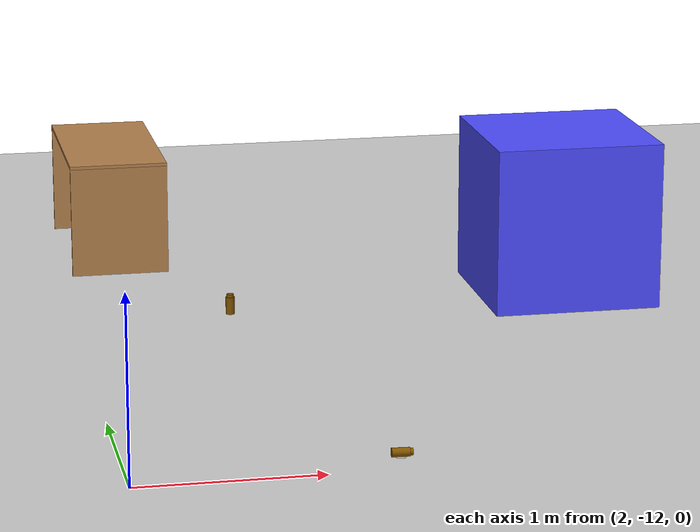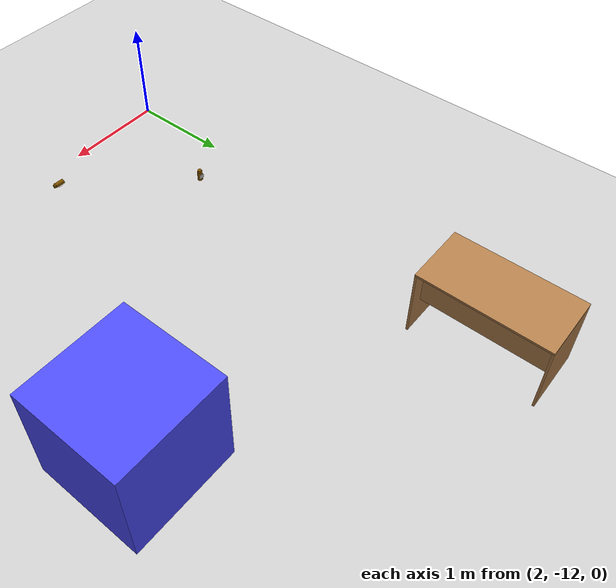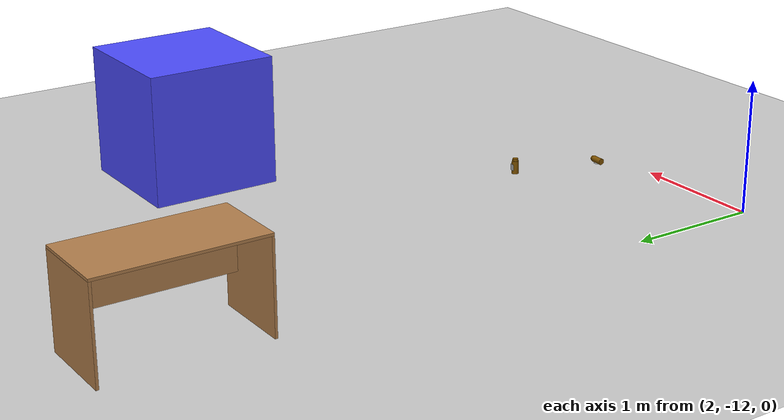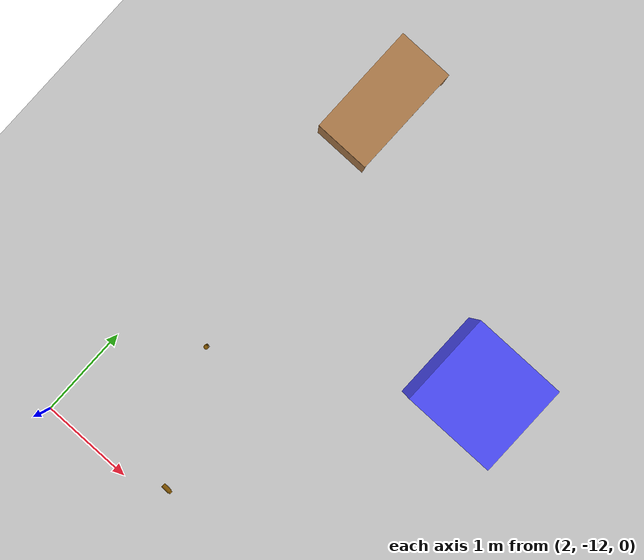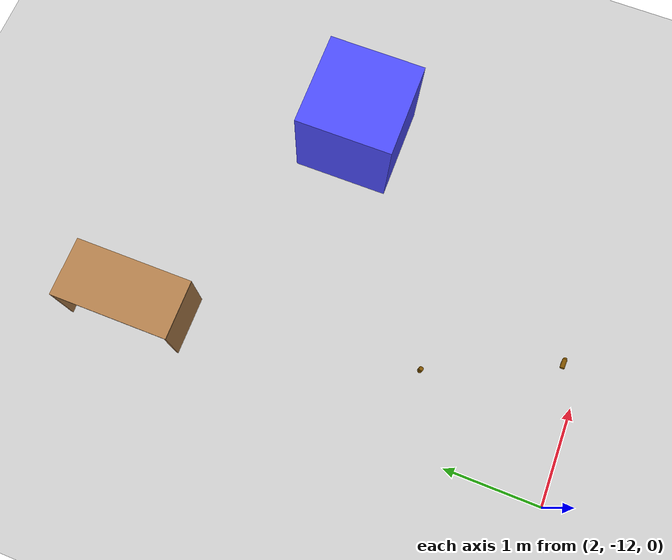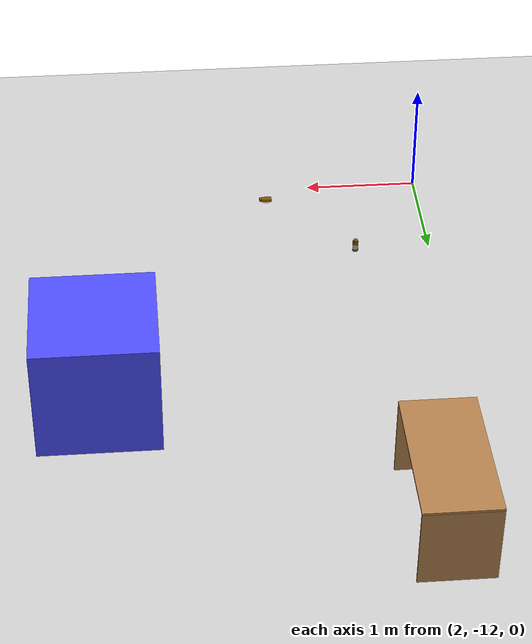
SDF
<sdf version="1.6">
 <world name="default">
  <model name="ground_plane">
   <static>1</static>
   <link name="link">
    <collision name="collision">
     <geometry><plane><normal>0 0 1</normal><size>100 100</size></plane></geometry>
     <surface><friction><ode><mu>100</mu><mu2>50</mu2></ode></friction></surface>
    </collision>
    <visual name="visual">
     <cast_shadows>0</cast_shadows>
     <geometry><plane><normal>0 0 1</normal><size>100 100</size></plane></geometry>
     <material>
      <script><uri>file://media/materials/scripts/gazebo.material</uri><name>Gazebo/Grey</name></script>
     </material>
    </visual>
   </link>
  </model>
  <model name="static_box_4">
   <link name="link">
    <inertial>
     <mass>100</mass>
     <inertia>
      <ixx>0.166667</ixx>
      <ixy>0</ixy>
      <ixz>0</ixz>
      <iyy>0.166667</iyy>
      <iyz>0</iyz>
      <izz>0.166667</izz>
     </inertia>
    </inertial>
    <visual name="visual">
     <geometry><box><size>1 1 1</size></box></geometry>
     <material>
      <script><name>Gazebo/Grey</name><uri>file://media/materials/scripts/gazebo.material</uri></script>
      <ambient>0.3 0.3 1 1</ambient>
      <diffuse>0.7 0.7 0.7 1</diffuse>
      <specular>0.01 0.01 0.01 1</specular>
      <emissive>0 0 0 1</emissive>
      <shader type="vertex"><normal_map>__default__</normal_map></shader>
     </material>
    </visual>
    <collision name="collision">
     <geometry><box><size>1 1 1</size></box></geometry>
     <surface>
      <friction>
       <ode><mu>1</mu><mu2>1</mu2><fdir1>0 0 0</fdir1><slip1>0</slip1><slip2>0</slip2></ode>
       <torsional>
        <coefficient>1</coefficient>
        <patch_radius>0</patch_radius>
        <surface_radius>0</surface_radius>
        <use_patch_radius>1</use_patch_radius>
        <ode><slip>0</slip></ode>
       </torsional>
      </friction>
      <bounce><restitution_coefficient>0</restitution_coefficient><threshold>1e+06</threshold></bounce>
      <contact>
       <collide_without_contact>0</collide_without_contact>
       <collide_without_contact_bitmask>1</collide_without_contact_bitmask>
       <collide_bitmask>1</collide_bitmask>
       <ode>
        <soft_cfm>0</soft_cfm>
        <soft_erp>0.2</soft_erp>
        <kp>1e+13</kp>
        <kd>1</kd>
        <max_vel>0.01</max_vel>
        <min_depth>0</min_depth>
       </ode>
       <bullet>
        <split_impulse>1</split_impulse>
        <split_impulse_penetration_threshold>-0.01</split_impulse_penetration_threshold>
        <soft_cfm>0</soft_cfm>
        <soft_erp>0.2</soft_erp>
        <kp>1e+13</kp>
        <kd>1</kd>
       </bullet>
      </contact>
     </surface>
    </collision>
   </link>
   <static>0</static>
   <pose>4.98897 -8.9961 0.499994 -1e-05 -6e-06 0.000596</pose>
  </model>
  <model name="office_desk">
   <link name="link">
    <inertial>
     <mass>10</mass>
     <inertia><ixx>1</ixx><ixy>0</ixy><ixz>0</ixz><iyy>1</iyy><iyz>0</iyz><izz>1</izz></inertia>
    </inertial>
    <visual name="top_board">
     <pose>-0.3 0.6 0.69 0 -0 0</pose>
     <geometry><box><size>0.6 1.2 0.02</size></box></geometry>
     <material>
      <script>
       <uri>model://base_materials/wood/scripts/wood.material</uri>
       <name>base_materials/dark_wood</name>
      </script>
     </material>
    </visual>
    <collision name="collision_top_board">
     <pose>-0.3 0.6 0.69 0 -0 0</pose>
     <geometry><box><size>0.6 1.2 0.02</size></box></geometry>
    </collision>
    <visual name="left_board">
     <pose>-0.3 0.01 0.34 0 -0 0</pose>
     <geometry><box><size>0.6 0.02 0.68</size></box></geometry>
     <material>
      <script>
       <uri>model://base_materials/wood/scripts/wood.material</uri>
       <name>base_materials/dark_wood</name>
      </script>
     </material>
    </visual>
    <collision name="collision_left_board">
     <pose>-0.3 0.01 0.34 0 -0 0</pose>
     <geometry><box><size>0.6 0.02 0.68</size></box></geometry>
    </collision>
    <visual name="right_board">
     <pose>-0.3 1.19 0.34 0 -0 0</pose>
     <geometry><box><size>0.6 0.02 0.68</size></box></geometry>
     <material>
      <script>
       <uri>model://base_materials/wood/scripts/wood.material</uri>
       <name>base_materials/dark_wood</name>
      </script>
     </material>
    </visual>
    <collision name="collision_right_board">
     <pose>-0.3 1.19 0.34 0 -0 0</pose>
     <geometry><box><size>0.6 0.02 0.68</size></box></geometry>
    </collision>
    <visual name="center_board">
     <pose>-0.14 0.6 0.49 0 -0 0</pose>
     <geometry><box><size>0.02 1.16 0.4</size></box></geometry>
     <material>
      <script>
       <uri>model://base_materials/wood/scripts/wood.material</uri>
       <name>base_materials/dark_wood</name>
      </script>
     </material>
    </visual>
    <collision name="ollision_center_board">
     <pose>-0.14 0.6 0.49 0 -0 0</pose>
     <geometry><box><size>0.02 1.16 0.4</size></box></geometry>
    </collision>
    <velocity_decay><linear>0</linear><angular>0</angular></velocity_decay>
   </link>
   <static>1</static>
   <pose>2.71315 -8.14411 0 0 -0 0</pose>
  </model>
  <model name="bottle_clone_1">
   <link name="link">
    <inertial>
     <mass>0.05</mass>
     <inertia><ixx>0.00058</ixx><ixy>0</ixy><ixz>0</ixz><iyy>0.00058</iyy><iyz>0</iyz><izz>0.00016</izz></inertia>
    </inertial>
    <visual name="top">
     <pose>0 0 0.0555 0 -0 0</pose>
     <geometry><cylinder><radius>0.019</radius><length>0.016</length></cylinder></geometry>
     <material>
      <ambient>1 0.647 0 1</ambient>
      <diffuse>0.5 0.3235 0 1</diffuse>
      <specular>0.1 0.1 0.1 1</specular>
      <emissive>0 0 0 0</emissive>
     </material>
    </visual>
    <collision name="collision_top">
     <pose>0 0 0.0555 0 -0 0</pose>
     <geometry><cylinder><radius>0.019</radius><length>0.016</length></cylinder></geometry>
     <surface>
      <bounce><restitution_coefficient>0.2</restitution_coefficient><threshold>0</threshold></bounce>
      <contact><ode><kp>10000</kp><max_vel>10</max_vel></ode></contact>
     </surface>
    </collision>
    <visual name="bottom">
     <geometry><cylinder><radius>0.0245</radius><length>0.095</length></cylinder></geometry>
     <material>
      <ambient>1 0.7 0.3 1</ambient>
      <diffuse>0.5 0.3235 0 1</diffuse>
      <specular>0.1 0.1 0.1 1</specular>
      <emissive>0 0 0 0</emissive>
     </material>
    </visual>
    <collision name="collision_bottom">
     <geometry><cylinder><radius>0.0245</radius><length>0.095</length></cylinder></geometry>
     <surface>
      <bounce><restitution_coefficient>0.2</restitution_coefficient><threshold>0</threshold></bounce>
      <contact><ode><kp>100000</kp><max_vel>10</max_vel></ode></contact>
     </surface>
    </collision>
    <velocity_decay><linear>0</linear><angular>0</angular></velocity_decay>
    <visual name="marker_4000">
     <pose>0.0245 0 0 0 1.57 3.141</pose>
     <geometry><box><size>0.045 0.045 0.0001</size></box></geometry>
     <material>
      <script>
       <uri>model://marker/4000/scripts</uri>
       <uri>model://marker/4000/textures</uri>
       <name>Marker/4000</name>
      </script>
     </material>
    </visual>
   </link>
   <static>0</static>
   <pose>3.40355 -11.8063 0.024498 1.5708 1.51038 1.52608</pose>
  </model>
  <model name="bottle_clone_2_clone_2_clone_0_clone">
   <link name="link">
    <inertial>
     <mass>0.05</mass>
     <inertia><ixx>0.00058</ixx><ixy>0</ixy><ixz>0</ixz><iyy>0.00058</iyy><iyz>0</iyz><izz>0.00016</izz></inertia>
    </inertial>
    <visual name="top">
     <pose>0 0 0.0555 0 -0 0</pose>
     <geometry><cylinder><radius>0.019</radius><length>0.016</length></cylinder></geometry>
     <material>
      <ambient>1 0.647 0 1</ambient>
      <diffuse>0.5 0.3235 0 1</diffuse>
      <specular>0.1 0.1 0.1 1</specular>
      <emissive>0 0 0 0</emissive>
     </material>
    </visual>
    <collision name="collision_top">
     <pose>0 0 0.0555 0 -0 0</pose>
     <geometry><cylinder><radius>0.019</radius><length>0.016</length></cylinder></geometry>
     <surface>
      <bounce><restitution_coefficient>0.2</restitution_coefficient><threshold>0</threshold></bounce>
      <contact><ode><kp>10000</kp><max_vel>10</max_vel></ode></contact>
     </surface>
    </collision>
    <visual name="bottom">
     <geometry><cylinder><radius>0.0245</radius><length>0.095</length></cylinder></geometry>
     <material>
      <ambient>1 0.7 0.3 1</ambient>
      <diffuse>0.5 0.3235 0 1</diffuse>
      <specular>0.1 0.1 0.1 1</specular>
      <emissive>0 0 0 0</emissive>
     </material>
    </visual>
    <collision name="collision_bottom">
     <geometry><cylinder><radius>0.0245</radius><length>0.095</length></cylinder></geometry>
     <surface>
      <bounce><restitution_coefficient>0.2</restitution_coefficient><threshold>0</threshold></bounce>
      <contact><ode><kp>100000</kp><max_vel>10</max_vel></ode></contact>
     </surface>
    </collision>
    <velocity_decay><linear>0</linear><angular>0</angular></velocity_decay>
    <visual name="marker_4000">
     <pose>0.0245 0 0 0 1.57 3.141</pose>
     <geometry><box><size>0.045 0.045 0.0001</size></box></geometry>
     <material>
      <script>
       <uri>model://marker/4000/scripts</uri>
       <uri>model://marker/4000/textures</uri>
       <name>Marker/4000</name>
      </script>
     </material>
    </visual>
   </link>
   <static>0</static>
   <pose>2.74627 -10.4573 0.4475 1e-05 2e-06 1.41226</pose>
  </model>
 </world>
</sdf>
